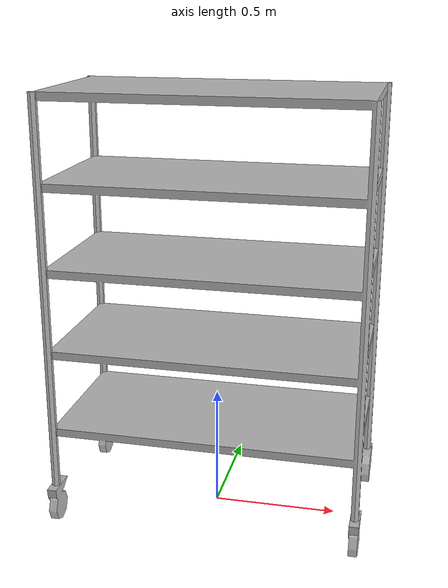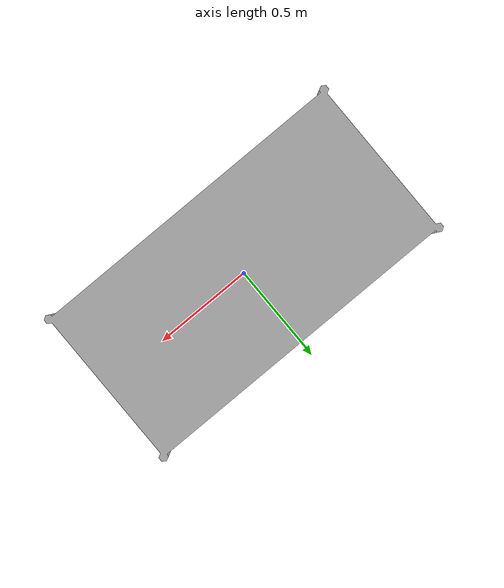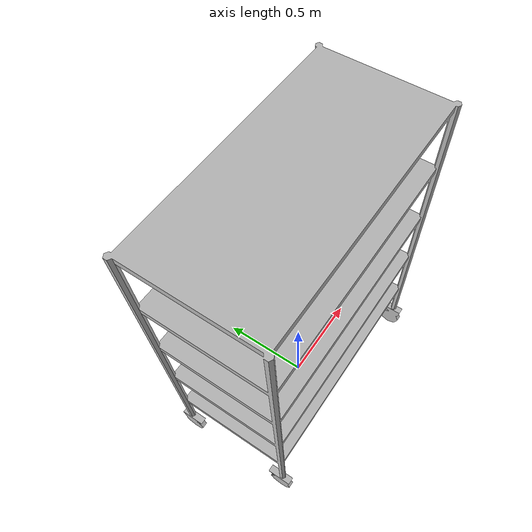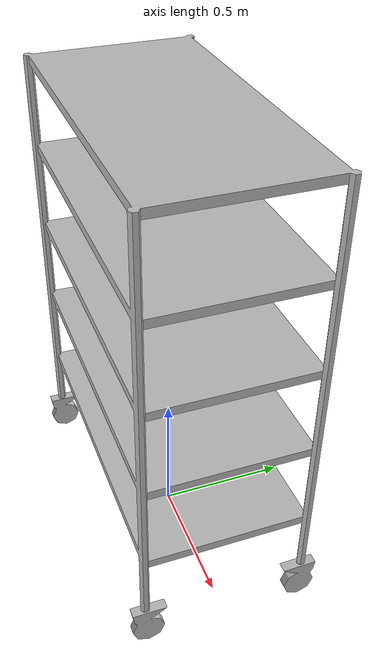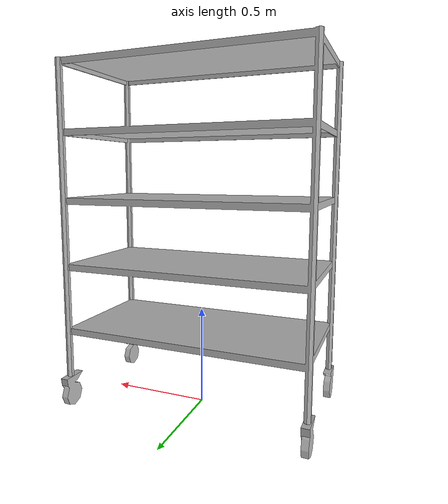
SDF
<?xml version="1.0" ?>
<sdf version="1.5">
  <model name="StorageRack">
    <link name="link">
      <pose>0 0 0 0 0 0</pose>

        <visual name="visual">
          <geometry>
            <mesh><uri>model://StorageRack/meshes/StorageRack.obj</uri></mesh>
          </geometry>
        </visual>

        <collision name="collision">
          <geometry>
            <mesh><uri>model://StorageRack/meshes/StorageRack.obj</uri></mesh>
          </geometry>
        </collision>

    </link>
  </model>
</sdf>
